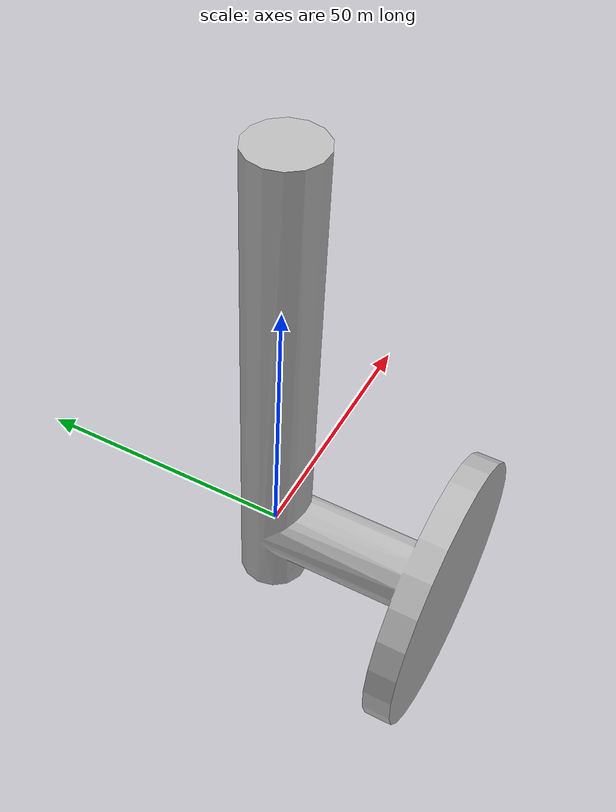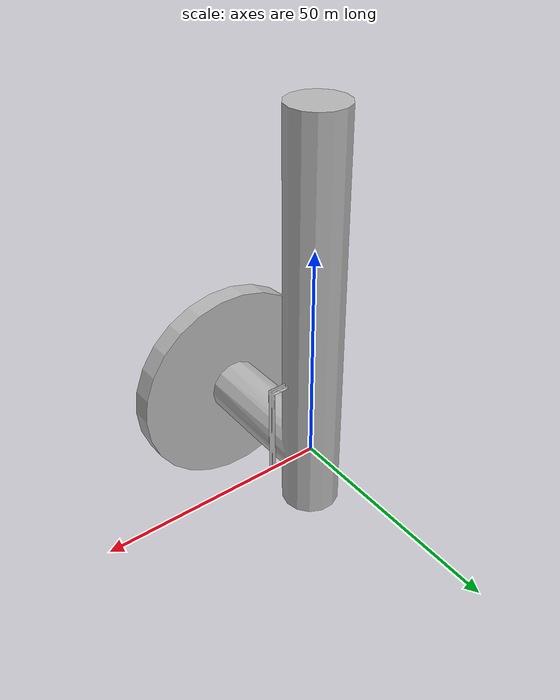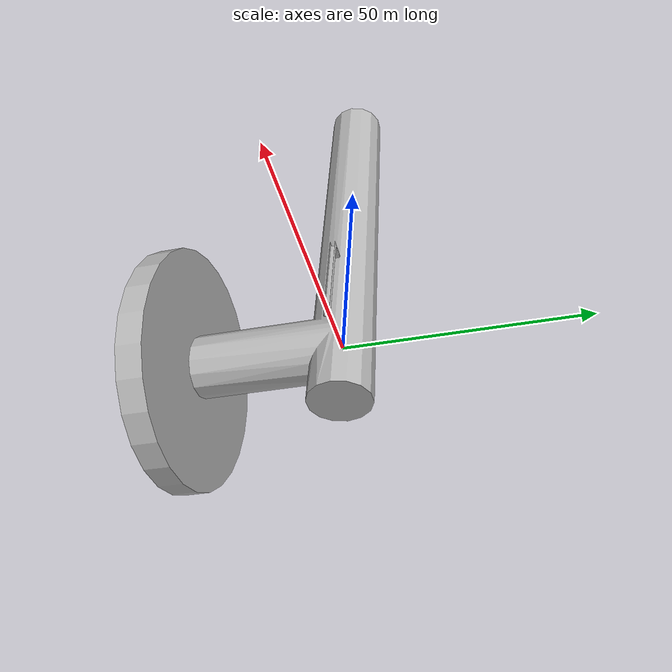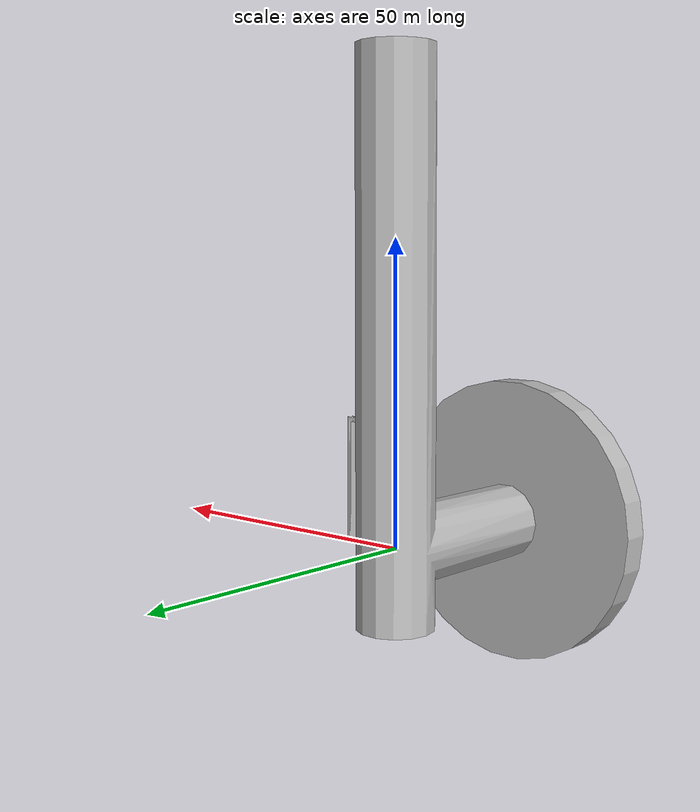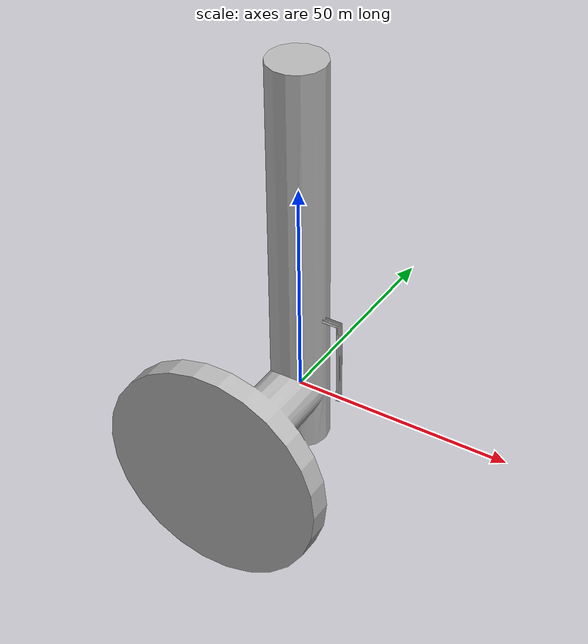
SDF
<sdf version="1.4">
    <model name="door">
        <pose>0 0 0 1.5708 0 0</pose>

        <link name="door_frame">
            <inertial>
                <pose>0.525 1 0.05 0 0 0</pose>
                <mass>30.0</mass>
                <inertia>
                    <ixx>1</ixx>
                    <ixy>0.0</ixy>
                    <ixz>0.0</ixz>
                    <iyy>1</iyy>
                    <iyz>0.0</iyz>
                    <izz>1</izz>
                </inertia>
            </inertial>

            <visual name="visual_frame">
                <pose>0 0 0 0 0 0</pose>
                <geometry>
                    <mesh>
                        <uri>model://door/meshes/frame.stl</uri>
                        <!-- TODO:   Find a proper scale for the mesh -->
	                    <scale> 1.0 1.0 1.0 </scale>
                    </mesh>
                </geometry>
            </visual>

            <!-- TODO: Create a "collision" entry with the same geometry than the "visual" entry.-->

        </link>

        <link name="door_body">
            <inertial>
                <pose>0.525 1 0.05 0 0 0</pose>
                <mass>1.0</mass>
                <inertia>
                    <ixx>0.083</ixx>
                    <ixy>0.0</ixy>
                    <ixz>0.0</ixz>
                    <iyy>0.083</iyy>
                    <iyz>0.0</iyz>
                    <izz>0.083</izz>
                </inertia>
            </inertial>

            <collision name="collision_door">
                <pose>0.525 0.995 0.05 0 0 0</pose>
                <geometry>
                    <box>
                        <size>0.9 1.99 0.03</size>
                    </box>
                </geometry>
            </collision>

            <visual name="visual_door">
                <pose>0.525 0.995 0.05 0 0 0</pose>
                <geometry>
                    <box>
                        <size>0.9 1.99 0.03</size>
                    </box>
                </geometry>
            </visual>
        </link>

        <link name="door_handle">
            <inertial>
                <pose>0.8 1.0 0.15 3.1416 0 0</pose>
                <mass>1.0</mass>
                <inertia>
                    <ixx>1</ixx>
                    <ixy>0.0</ixy>
                    <ixz>0.0</ixz>
                    <iyy>1</iyy>
                    <iyz>0.0</iyz>
                    <izz>1</izz>
                </inertia>
            </inertial>

            <visual name="visual_handle">

                <!-- TODO:   Find proper xyz and RPY values-->
                <pose>0 0 0 0 0 0</pose>
                <geometry>
                    <mesh>
                        <uri>model://door/meshes/handle.stl</uri>

                        <!-- TODO:   Find a proper scale for the mesh -->
	                    <scale> 1.0 1.0 1.0 </scale>
                    </mesh>
                </geometry>
            </visual>

            <!-- TODO: Create a "collision" entry with the same geometry than the "visual" entry.-->

        </link>

        <!-- TODO: Create a "joint" relation between door_body and door_handle. Define the mandatory elements and coherent limits.-->

        <joint name="door_hinge" type="revolute">
            <parent>door_frame</parent>
            <child>door_body</child>
            <pose>0.075 0 0.065 0 0 0</pose>
            <axis>
                <xyz>0 1 0</xyz>
                <dynamics>
                    <damping>0.1</damping>
                    <friction>0.1</friction>
                </dynamics>

                <!-- TODO: Define coherent limits for this joint. -->

            </axis>
        </joint>

        <joint name="world_joint" type="revolute">
            <child>door_frame</child>
            <parent>world</parent>
            <axis>
                <limit>
                    <lower>0</lower>
                    <upper>0</upper>
                </limit>
                <xyz>0 1 0</xyz>
                <dynamics>
                    <damping>1.0</damping>
                </dynamics>
                <use_parent_model_frame>true</use_parent_model_frame>
            </axis>
            <physics>
                <ode>
                    <cfm_damping>1</cfm_damping>
                </ode>
            </physics>
        </joint>

    </model>
</sdf>
